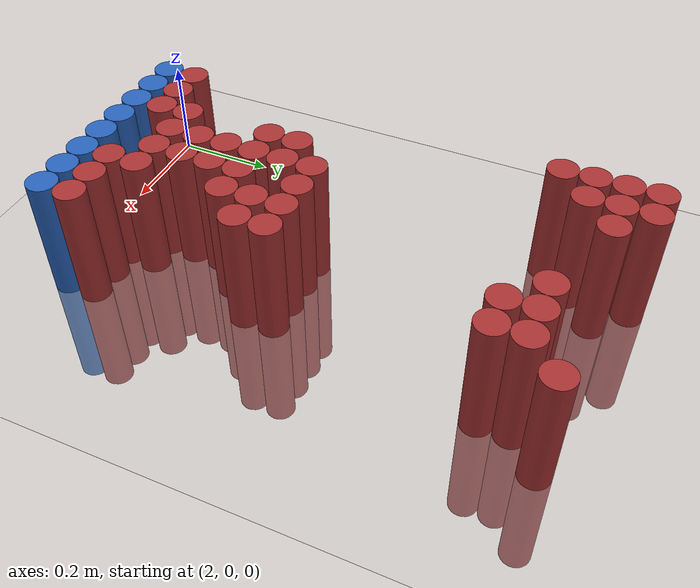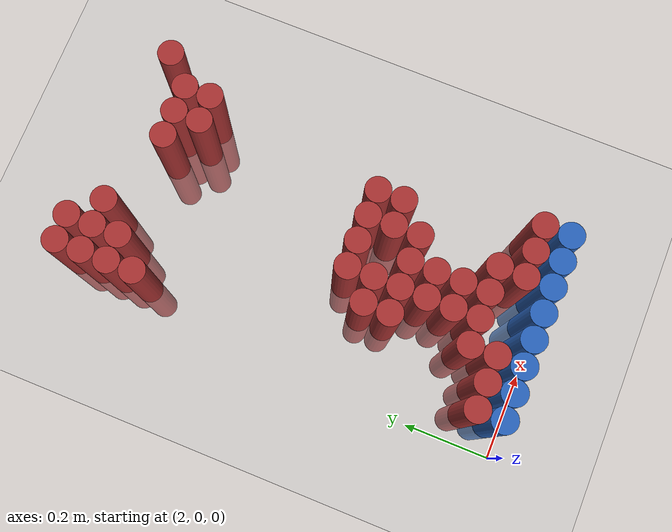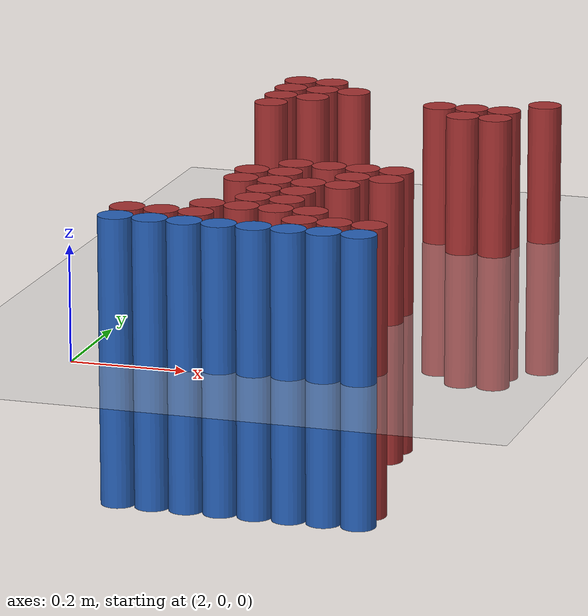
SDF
<sdf version="1.6">
 <world name="default">
  <model name="ground_plane">
   <static>1</static>
   <link name="link">
    <collision name="collision">
     <geometry><plane><normal>0 0 1</normal><size>100 100</size></plane></geometry>
     <surface><friction><ode><mu>100</mu><mu2>50</mu2></ode></friction></surface>
    </collision>
    <visual name="visual">
     <cast_shadows>0</cast_shadows>
     <geometry><plane><normal>0 0 1</normal><size>100 100</size></plane></geometry>
     <material>
      <script><uri>file://media/materials/scripts/gazebo.material</uri><name>Gazebo/Grey</name></script>
     </material>
    </visual>
   </link>
  </model>
  <model name="unit_cylinder_235">
   <static>1</static>
   <pose>2.070000 1.050000 0.000000 0.000000 0.000000 0.000000</pose>
   <link name="link">
    <inertial>
     <mass>1</mass>
     <inertia><ixx>0.145833</ixx><ixy>0</ixy><ixz>0</ixz><iyy>0.145833</iyy><iyz>0</iyz><izz>0.125</izz></inertia>
    </inertial>
    <collision name="collision">
     <geometry><cylinder><radius>0.030000</radius><length>0.5</length></cylinder></geometry>
    </collision>
    <visual name="visual">
     <geometry><cylinder><radius>0.030000</radius><length>0.5</length></cylinder></geometry>
     <material>
      <ambient>0.648000 0.192000 0.192000 1</ambient>
      <diffuse>0.648000 0.192000 0.192000 1</diffuse>
     </material>
     <material>
      <script><name>Gazebo/Grey</name><uri>file://media/materials/scripts/gazebo.material</uri></script>
     </material>
    </visual>
   </link>
  </model>
  <model name="unit_cylinder_236">
   <static>1</static>
   <pose>2.130000 1.050000 0.000000 0.000000 0.000000 0.000000</pose>
   <link name="link">
    <inertial>
     <mass>1</mass>
     <inertia><ixx>0.145833</ixx><ixy>0</ixy><ixz>0</ixz><iyy>0.145833</iyy><iyz>0</iyz><izz>0.125</izz></inertia>
    </inertial>
    <collision name="collision">
     <geometry><cylinder><radius>0.030000</radius><length>0.5</length></cylinder></geometry>
    </collision>
    <visual name="visual">
     <geometry><cylinder><radius>0.030000</radius><length>0.5</length></cylinder></geometry>
     <material>
      <ambient>0.648000 0.192000 0.192000 1</ambient>
      <diffuse>0.648000 0.192000 0.192000 1</diffuse>
     </material>
     <material>
      <script><name>Gazebo/Grey</name><uri>file://media/materials/scripts/gazebo.material</uri></script>
     </material>
    </visual>
   </link>
  </model>
  <model name="unit_cylinder_243">
   <static>1</static>
   <pose>2.070000 0.990000 0.000000 0.000000 0.000000 0.000000</pose>
   <link name="link">
    <inertial>
     <mass>1</mass>
     <inertia><ixx>0.145833</ixx><ixy>0</ixy><ixz>0</ixz><iyy>0.145833</iyy><iyz>0</iyz><izz>0.125</izz></inertia>
    </inertial>
    <collision name="collision">
     <geometry><cylinder><radius>0.030000</radius><length>0.5</length></cylinder></geometry>
    </collision>
    <visual name="visual">
     <geometry><cylinder><radius>0.030000</radius><length>0.5</length></cylinder></geometry>
     <material>
      <ambient>0.648000 0.192000 0.192000 1</ambient>
      <diffuse>0.648000 0.192000 0.192000 1</diffuse>
     </material>
     <material>
      <script><name>Gazebo/Grey</name><uri>file://media/materials/scripts/gazebo.material</uri></script>
     </material>
    </visual>
   </link>
  </model>
  <model name="unit_cylinder_244">
   <static>1</static>
   <pose>2.130000 0.990000 0.000000 0.000000 0.000000 0.000000</pose>
   <link name="link">
    <inertial>
     <mass>1</mass>
     <inertia><ixx>0.145833</ixx><ixy>0</ixy><ixz>0</ixz><iyy>0.145833</iyy><iyz>0</iyz><izz>0.125</izz></inertia>
    </inertial>
    <collision name="collision">
     <geometry><cylinder><radius>0.030000</radius><length>0.5</length></cylinder></geometry>
    </collision>
    <visual name="visual">
     <geometry><cylinder><radius>0.030000</radius><length>0.5</length></cylinder></geometry>
     <material>
      <ambient>0.648000 0.192000 0.192000 1</ambient>
      <diffuse>0.648000 0.192000 0.192000 1</diffuse>
     </material>
     <material>
      <script><name>Gazebo/Grey</name><uri>file://media/materials/scripts/gazebo.material</uri></script>
     </material>
    </visual>
   </link>
  </model>
  <model name="unit_cylinder_245">
   <static>1</static>
   <pose>2.190000 0.990000 0.000000 0.000000 0.000000 0.000000</pose>
   <link name="link">
    <inertial>
     <mass>1</mass>
     <inertia><ixx>0.145833</ixx><ixy>0</ixy><ixz>0</ixz><iyy>0.145833</iyy><iyz>0</iyz><izz>0.125</izz></inertia>
    </inertial>
    <collision name="collision">
     <geometry><cylinder><radius>0.030000</radius><length>0.5</length></cylinder></geometry>
    </collision>
    <visual name="visual">
     <geometry><cylinder><radius>0.030000</radius><length>0.5</length></cylinder></geometry>
     <material>
      <ambient>0.648000 0.192000 0.192000 1</ambient>
      <diffuse>0.648000 0.192000 0.192000 1</diffuse>
     </material>
     <material>
      <script><name>Gazebo/Grey</name><uri>file://media/materials/scripts/gazebo.material</uri></script>
     </material>
    </visual>
   </link>
  </model>
  <model name="unit_cylinder_246">
   <static>1</static>
   <pose>2.550000 0.990000 0.000000 0.000000 0.000000 0.000000</pose>
   <link name="link">
    <inertial>
     <mass>1</mass>
     <inertia><ixx>0.145833</ixx><ixy>0</ixy><ixz>0</ixz><iyy>0.145833</iyy><iyz>0</iyz><izz>0.125</izz></inertia>
    </inertial>
    <collision name="collision">
     <geometry><cylinder><radius>0.030000</radius><length>0.5</length></cylinder></geometry>
    </collision>
    <visual name="visual">
     <geometry><cylinder><radius>0.030000</radius><length>0.5</length></cylinder></geometry>
     <material>
      <ambient>0.648000 0.192000 0.192000 1</ambient>
      <diffuse>0.648000 0.192000 0.192000 1</diffuse>
     </material>
     <material>
      <script><name>Gazebo/Grey</name><uri>file://media/materials/scripts/gazebo.material</uri></script>
     </material>
    </visual>
   </link>
  </model>
  <model name="unit_cylinder_254">
   <static>1</static>
   <pose>2.070000 0.930000 0.000000 0.000000 0.000000 0.000000</pose>
   <link name="link">
    <inertial>
     <mass>1</mass>
     <inertia><ixx>0.145833</ixx><ixy>0</ixy><ixz>0</ixz><iyy>0.145833</iyy><iyz>0</iyz><izz>0.125</izz></inertia>
    </inertial>
    <collision name="collision">
     <geometry><cylinder><radius>0.030000</radius><length>0.5</length></cylinder></geometry>
    </collision>
    <visual name="visual">
     <geometry><cylinder><radius>0.030000</radius><length>0.5</length></cylinder></geometry>
     <material>
      <ambient>0.648000 0.192000 0.192000 1</ambient>
      <diffuse>0.648000 0.192000 0.192000 1</diffuse>
     </material>
     <material>
      <script><name>Gazebo/Grey</name><uri>file://media/materials/scripts/gazebo.material</uri></script>
     </material>
    </visual>
   </link>
  </model>
  <model name="unit_cylinder_255">
   <static>1</static>
   <pose>2.130000 0.930000 0.000000 0.000000 0.000000 0.000000</pose>
   <link name="link">
    <inertial>
     <mass>1</mass>
     <inertia><ixx>0.145833</ixx><ixy>0</ixy><ixz>0</ixz><iyy>0.145833</iyy><iyz>0</iyz><izz>0.125</izz></inertia>
    </inertial>
    <collision name="collision">
     <geometry><cylinder><radius>0.030000</radius><length>0.5</length></cylinder></geometry>
    </collision>
    <visual name="visual">
     <geometry><cylinder><radius>0.030000</radius><length>0.5</length></cylinder></geometry>
     <material>
      <ambient>0.648000 0.192000 0.192000 1</ambient>
      <diffuse>0.648000 0.192000 0.192000 1</diffuse>
     </material>
     <material>
      <script><name>Gazebo/Grey</name><uri>file://media/materials/scripts/gazebo.material</uri></script>
     </material>
    </visual>
   </link>
  </model>
  <model name="unit_cylinder_256">
   <static>1</static>
   <pose>2.370000 0.930000 0.000000 0.000000 0.000000 0.000000</pose>
   <link name="link">
    <inertial>
     <mass>1</mass>
     <inertia><ixx>0.145833</ixx><ixy>0</ixy><ixz>0</ixz><iyy>0.145833</iyy><iyz>0</iyz><izz>0.125</izz></inertia>
    </inertial>
    <collision name="collision">
     <geometry><cylinder><radius>0.030000</radius><length>0.5</length></cylinder></geometry>
    </collision>
    <visual name="visual">
     <geometry><cylinder><radius>0.030000</radius><length>0.5</length></cylinder></geometry>
     <material>
      <ambient>0.648000 0.192000 0.192000 1</ambient>
      <diffuse>0.648000 0.192000 0.192000 1</diffuse>
     </material>
     <material>
      <script><name>Gazebo/Grey</name><uri>file://media/materials/scripts/gazebo.material</uri></script>
     </material>
    </visual>
   </link>
  </model>
  <model name="unit_cylinder_257">
   <static>1</static>
   <pose>2.430000 0.930000 0.000000 0.000000 0.000000 0.000000</pose>
   <link name="link">
    <inertial>
     <mass>1</mass>
     <inertia><ixx>0.145833</ixx><ixy>0</ixy><ixz>0</ixz><iyy>0.145833</iyy><iyz>0</iyz><izz>0.125</izz></inertia>
    </inertial>
    <collision name="collision">
     <geometry><cylinder><radius>0.030000</radius><length>0.5</length></cylinder></geometry>
    </collision>
    <visual name="visual">
     <geometry><cylinder><radius>0.030000</radius><length>0.5</length></cylinder></geometry>
     <material>
      <ambient>0.648000 0.192000 0.192000 1</ambient>
      <diffuse>0.648000 0.192000 0.192000 1</diffuse>
     </material>
     <material>
      <script><name>Gazebo/Grey</name><uri>file://media/materials/scripts/gazebo.material</uri></script>
     </material>
    </visual>
   </link>
  </model>
  <model name="unit_cylinder_258">
   <static>1</static>
   <pose>2.490000 0.930000 0.000000 0.000000 0.000000 0.000000</pose>
   <link name="link">
    <inertial>
     <mass>1</mass>
     <inertia><ixx>0.145833</ixx><ixy>0</ixy><ixz>0</ixz><iyy>0.145833</iyy><iyz>0</iyz><izz>0.125</izz></inertia>
    </inertial>
    <collision name="collision">
     <geometry><cylinder><radius>0.030000</radius><length>0.5</length></cylinder></geometry>
    </collision>
    <visual name="visual">
     <geometry><cylinder><radius>0.030000</radius><length>0.5</length></cylinder></geometry>
     <material>
      <ambient>0.648000 0.192000 0.192000 1</ambient>
      <diffuse>0.648000 0.192000 0.192000 1</diffuse>
     </material>
     <material>
      <script><name>Gazebo/Grey</name><uri>file://media/materials/scripts/gazebo.material</uri></script>
     </material>
    </visual>
   </link>
  </model>
  <model name="unit_cylinder_268">
   <static>1</static>
   <pose>2.070000 0.870000 0.000000 0.000000 0.000000 0.000000</pose>
   <link name="link">
    <inertial>
     <mass>1</mass>
     <inertia><ixx>0.145833</ixx><ixy>0</ixy><ixz>0</ixz><iyy>0.145833</iyy><iyz>0</iyz><izz>0.125</izz></inertia>
    </inertial>
    <collision name="collision">
     <geometry><cylinder><radius>0.030000</radius><length>0.5</length></cylinder></geometry>
    </collision>
    <visual name="visual">
     <geometry><cylinder><radius>0.030000</radius><length>0.5</length></cylinder></geometry>
     <material>
      <ambient>0.648000 0.192000 0.192000 1</ambient>
      <diffuse>0.648000 0.192000 0.192000 1</diffuse>
     </material>
     <material>
      <script><name>Gazebo/Grey</name><uri>file://media/materials/scripts/gazebo.material</uri></script>
     </material>
    </visual>
   </link>
  </model>
  <model name="unit_cylinder_269">
   <static>1</static>
   <pose>2.430000 0.870000 0.000000 0.000000 0.000000 0.000000</pose>
   <link name="link">
    <inertial>
     <mass>1</mass>
     <inertia><ixx>0.145833</ixx><ixy>0</ixy><ixz>0</ixz><iyy>0.145833</iyy><iyz>0</iyz><izz>0.125</izz></inertia>
    </inertial>
    <collision name="collision">
     <geometry><cylinder><radius>0.030000</radius><length>0.5</length></cylinder></geometry>
    </collision>
    <visual name="visual">
     <geometry><cylinder><radius>0.030000</radius><length>0.5</length></cylinder></geometry>
     <material>
      <ambient>0.648000 0.192000 0.192000 1</ambient>
      <diffuse>0.648000 0.192000 0.192000 1</diffuse>
     </material>
     <material>
      <script><name>Gazebo/Grey</name><uri>file://media/materials/scripts/gazebo.material</uri></script>
     </material>
    </visual>
   </link>
  </model>
  <model name="unit_cylinder_270">
   <static>1</static>
   <pose>2.490000 0.870000 0.000000 0.000000 0.000000 0.000000</pose>
   <link name="link">
    <inertial>
     <mass>1</mass>
     <inertia><ixx>0.145833</ixx><ixy>0</ixy><ixz>0</ixz><iyy>0.145833</iyy><iyz>0</iyz><izz>0.125</izz></inertia>
    </inertial>
    <collision name="collision">
     <geometry><cylinder><radius>0.030000</radius><length>0.5</length></cylinder></geometry>
    </collision>
    <visual name="visual">
     <geometry><cylinder><radius>0.030000</radius><length>0.5</length></cylinder></geometry>
     <material>
      <ambient>0.648000 0.192000 0.192000 1</ambient>
      <diffuse>0.648000 0.192000 0.192000 1</diffuse>
     </material>
     <material>
      <script><name>Gazebo/Grey</name><uri>file://media/materials/scripts/gazebo.material</uri></script>
     </material>
    </visual>
   </link>
  </model>
  <model name="unit_cylinder_295">
   <static>1</static>
   <pose>2.250000 0.450000 0.000000 0.000000 0.000000 0.000000</pose>
   <link name="link">
    <inertial>
     <mass>1</mass>
     <inertia><ixx>0.145833</ixx><ixy>0</ixy><ixz>0</ixz><iyy>0.145833</iyy><iyz>0</iyz><izz>0.125</izz></inertia>
    </inertial>
    <collision name="collision">
     <geometry><cylinder><radius>0.030000</radius><length>0.5</length></cylinder></geometry>
    </collision>
    <visual name="visual">
     <geometry><cylinder><radius>0.030000</radius><length>0.5</length></cylinder></geometry>
     <material>
      <ambient>0.648000 0.192000 0.192000 1</ambient>
      <diffuse>0.648000 0.192000 0.192000 1</diffuse>
     </material>
     <material>
      <script><name>Gazebo/Grey</name><uri>file://media/materials/scripts/gazebo.material</uri></script>
     </material>
    </visual>
   </link>
  </model>
  <model name="unit_cylinder_296">
   <static>1</static>
   <pose>2.310000 0.450000 0.000000 0.000000 0.000000 0.000000</pose>
   <link name="link">
    <inertial>
     <mass>1</mass>
     <inertia><ixx>0.145833</ixx><ixy>0</ixy><ixz>0</ixz><iyy>0.145833</iyy><iyz>0</iyz><izz>0.125</izz></inertia>
    </inertial>
    <collision name="collision">
     <geometry><cylinder><radius>0.030000</radius><length>0.5</length></cylinder></geometry>
    </collision>
    <visual name="visual">
     <geometry><cylinder><radius>0.030000</radius><length>0.5</length></cylinder></geometry>
     <material>
      <ambient>0.648000 0.192000 0.192000 1</ambient>
      <diffuse>0.648000 0.192000 0.192000 1</diffuse>
     </material>
     <material>
      <script><name>Gazebo/Grey</name><uri>file://media/materials/scripts/gazebo.material</uri></script>
     </material>
    </visual>
   </link>
  </model>
  <model name="unit_cylinder_297">
   <static>1</static>
   <pose>2.370000 0.450000 0.000000 0.000000 0.000000 0.000000</pose>
   <link name="link">
    <inertial>
     <mass>1</mass>
     <inertia><ixx>0.145833</ixx><ixy>0</ixy><ixz>0</ixz><iyy>0.145833</iyy><iyz>0</iyz><izz>0.125</izz></inertia>
    </inertial>
    <collision name="collision">
     <geometry><cylinder><radius>0.030000</radius><length>0.5</length></cylinder></geometry>
    </collision>
    <visual name="visual">
     <geometry><cylinder><radius>0.030000</radius><length>0.5</length></cylinder></geometry>
     <material>
      <ambient>0.648000 0.192000 0.192000 1</ambient>
      <diffuse>0.648000 0.192000 0.192000 1</diffuse>
     </material>
     <material>
      <script><name>Gazebo/Grey</name><uri>file://media/materials/scripts/gazebo.material</uri></script>
     </material>
    </visual>
   </link>
  </model>
  <model name="unit_cylinder_298">
   <static>1</static>
   <pose>2.430000 0.450000 0.000000 0.000000 0.000000 0.000000</pose>
   <link name="link">
    <inertial>
     <mass>1</mass>
     <inertia><ixx>0.145833</ixx><ixy>0</ixy><ixz>0</ixz><iyy>0.145833</iyy><iyz>0</iyz><izz>0.125</izz></inertia>
    </inertial>
    <collision name="collision">
     <geometry><cylinder><radius>0.030000</radius><length>0.5</length></cylinder></geometry>
    </collision>
    <visual name="visual">
     <geometry><cylinder><radius>0.030000</radius><length>0.5</length></cylinder></geometry>
     <material>
      <ambient>0.648000 0.192000 0.192000 1</ambient>
      <diffuse>0.648000 0.192000 0.192000 1</diffuse>
     </material>
     <material>
      <script><name>Gazebo/Grey</name><uri>file://media/materials/scripts/gazebo.material</uri></script>
     </material>
    </visual>
   </link>
  </model>
  <model name="unit_cylinder_299">
   <static>1</static>
   <pose>2.190000 0.390000 0.000000 0.000000 0.000000 0.000000</pose>
   <link name="link">
    <inertial>
     <mass>1</mass>
     <inertia><ixx>0.145833</ixx><ixy>0</ixy><ixz>0</ixz><iyy>0.145833</iyy><iyz>0</iyz><izz>0.125</izz></inertia>
    </inertial>
    <collision name="collision">
     <geometry><cylinder><radius>0.030000</radius><length>0.5</length></cylinder></geometry>
    </collision>
    <visual name="visual">
     <geometry><cylinder><radius>0.030000</radius><length>0.5</length></cylinder></geometry>
     <material>
      <ambient>0.648000 0.192000 0.192000 1</ambient>
      <diffuse>0.648000 0.192000 0.192000 1</diffuse>
     </material>
     <material>
      <script><name>Gazebo/Grey</name><uri>file://media/materials/scripts/gazebo.material</uri></script>
     </material>
    </visual>
   </link>
  </model>
  <model name="unit_cylinder_300">
   <static>1</static>
   <pose>2.250000 0.390000 0.000000 0.000000 0.000000 0.000000</pose>
   <link name="link">
    <inertial>
     <mass>1</mass>
     <inertia><ixx>0.145833</ixx><ixy>0</ixy><ixz>0</ixz><iyy>0.145833</iyy><iyz>0</iyz><izz>0.125</izz></inertia>
    </inertial>
    <collision name="collision">
     <geometry><cylinder><radius>0.030000</radius><length>0.5</length></cylinder></geometry>
    </collision>
    <visual name="visual">
     <geometry><cylinder><radius>0.030000</radius><length>0.5</length></cylinder></geometry>
     <material>
      <ambient>0.648000 0.192000 0.192000 1</ambient>
      <diffuse>0.648000 0.192000 0.192000 1</diffuse>
     </material>
     <material>
      <script><name>Gazebo/Grey</name><uri>file://media/materials/scripts/gazebo.material</uri></script>
     </material>
    </visual>
   </link>
  </model>
  <model name="unit_cylinder_301">
   <static>1</static>
   <pose>2.370000 0.390000 0.000000 0.000000 0.000000 0.000000</pose>
   <link name="link">
    <inertial>
     <mass>1</mass>
     <inertia><ixx>0.145833</ixx><ixy>0</ixy><ixz>0</ixz><iyy>0.145833</iyy><iyz>0</iyz><izz>0.125</izz></inertia>
    </inertial>
    <collision name="collision">
     <geometry><cylinder><radius>0.030000</radius><length>0.5</length></cylinder></geometry>
    </collision>
    <visual name="visual">
     <geometry><cylinder><radius>0.030000</radius><length>0.5</length></cylinder></geometry>
     <material>
      <ambient>0.648000 0.192000 0.192000 1</ambient>
      <diffuse>0.648000 0.192000 0.192000 1</diffuse>
     </material>
     <material>
      <script><name>Gazebo/Grey</name><uri>file://media/materials/scripts/gazebo.material</uri></script>
     </material>
    </visual>
   </link>
  </model>
  <model name="unit_cylinder_302">
   <static>1</static>
   <pose>2.430000 0.390000 0.000000 0.000000 0.000000 0.000000</pose>
   <link name="link">
    <inertial>
     <mass>1</mass>
     <inertia><ixx>0.145833</ixx><ixy>0</ixy><ixz>0</ixz><iyy>0.145833</iyy><iyz>0</iyz><izz>0.125</izz></inertia>
    </inertial>
    <collision name="collision">
     <geometry><cylinder><radius>0.030000</radius><length>0.5</length></cylinder></geometry>
    </collision>
    <visual name="visual">
     <geometry><cylinder><radius>0.030000</radius><length>0.5</length></cylinder></geometry>
     <material>
      <ambient>0.648000 0.192000 0.192000 1</ambient>
      <diffuse>0.648000 0.192000 0.192000 1</diffuse>
     </material>
     <material>
      <script><name>Gazebo/Grey</name><uri>file://media/materials/scripts/gazebo.material</uri></script>
     </material>
    </visual>
   </link>
  </model>
  <model name="unit_cylinder_303">
   <static>1</static>
   <pose>2.190000 0.330000 0.000000 0.000000 0.000000 0.000000</pose>
   <link name="link">
    <inertial>
     <mass>1</mass>
     <inertia><ixx>0.145833</ixx><ixy>0</ixy><ixz>0</ixz><iyy>0.145833</iyy><iyz>0</iyz><izz>0.125</izz></inertia>
    </inertial>
    <collision name="collision">
     <geometry><cylinder><radius>0.030000</radius><length>0.5</length></cylinder></geometry>
    </collision>
    <visual name="visual">
     <geometry><cylinder><radius>0.030000</radius><length>0.5</length></cylinder></geometry>
     <material>
      <ambient>0.648000 0.192000 0.192000 1</ambient>
      <diffuse>0.648000 0.192000 0.192000 1</diffuse>
     </material>
     <material>
      <script><name>Gazebo/Grey</name><uri>file://media/materials/scripts/gazebo.material</uri></script>
     </material>
    </visual>
   </link>
  </model>
  <model name="unit_cylinder_304">
   <static>1</static>
   <pose>2.250000 0.330000 0.000000 0.000000 0.000000 0.000000</pose>
   <link name="link">
    <inertial>
     <mass>1</mass>
     <inertia><ixx>0.145833</ixx><ixy>0</ixy><ixz>0</ixz><iyy>0.145833</iyy><iyz>0</iyz><izz>0.125</izz></inertia>
    </inertial>
    <collision name="collision">
     <geometry><cylinder><radius>0.030000</radius><length>0.5</length></cylinder></geometry>
    </collision>
    <visual name="visual">
     <geometry><cylinder><radius>0.030000</radius><length>0.5</length></cylinder></geometry>
     <material>
      <ambient>0.648000 0.192000 0.192000 1</ambient>
      <diffuse>0.648000 0.192000 0.192000 1</diffuse>
     </material>
     <material>
      <script><name>Gazebo/Grey</name><uri>file://media/materials/scripts/gazebo.material</uri></script>
     </material>
    </visual>
   </link>
  </model>
  <model name="unit_cylinder_305">
   <static>1</static>
   <pose>2.310000 0.330000 0.000000 0.000000 0.000000 0.000000</pose>
   <link name="link">
    <inertial>
     <mass>1</mass>
     <inertia><ixx>0.145833</ixx><ixy>0</ixy><ixz>0</ixz><iyy>0.145833</iyy><iyz>0</iyz><izz>0.125</izz></inertia>
    </inertial>
    <collision name="collision">
     <geometry><cylinder><radius>0.030000</radius><length>0.5</length></cylinder></geometry>
    </collision>
    <visual name="visual">
     <geometry><cylinder><radius>0.030000</radius><length>0.5</length></cylinder></geometry>
     <material>
      <ambient>0.648000 0.192000 0.192000 1</ambient>
      <diffuse>0.648000 0.192000 0.192000 1</diffuse>
     </material>
     <material>
      <script><name>Gazebo/Grey</name><uri>file://media/materials/scripts/gazebo.material</uri></script>
     </material>
    </visual>
   </link>
  </model>
  <model name="unit_cylinder_306">
   <static>1</static>
   <pose>2.370000 0.330000 0.000000 0.000000 0.000000 0.000000</pose>
   <link name="link">
    <inertial>
     <mass>1</mass>
     <inertia><ixx>0.145833</ixx><ixy>0</ixy><ixz>0</ixz><iyy>0.145833</iyy><iyz>0</iyz><izz>0.125</izz></inertia>
    </inertial>
    <collision name="collision">
     <geometry><cylinder><radius>0.030000</radius><length>0.5</length></cylinder></geometry>
    </collision>
    <visual name="visual">
     <geometry><cylinder><radius>0.030000</radius><length>0.5</length></cylinder></geometry>
     <material>
      <ambient>0.648000 0.192000 0.192000 1</ambient>
      <diffuse>0.648000 0.192000 0.192000 1</diffuse>
     </material>
     <material>
      <script><name>Gazebo/Grey</name><uri>file://media/materials/scripts/gazebo.material</uri></script>
     </material>
    </visual>
   </link>
  </model>
  <model name="unit_cylinder_308">
   <static>1</static>
   <pose>2.250000 0.270000 0.000000 0.000000 0.000000 0.000000</pose>
   <link name="link">
    <inertial>
     <mass>1</mass>
     <inertia><ixx>0.145833</ixx><ixy>0</ixy><ixz>0</ixz><iyy>0.145833</iyy><iyz>0</iyz><izz>0.125</izz></inertia>
    </inertial>
    <collision name="collision">
     <geometry><cylinder><radius>0.030000</radius><length>0.5</length></cylinder></geometry>
    </collision>
    <visual name="visual">
     <geometry><cylinder><radius>0.030000</radius><length>0.5</length></cylinder></geometry>
     <material>
      <ambient>0.648000 0.192000 0.192000 1</ambient>
      <diffuse>0.648000 0.192000 0.192000 1</diffuse>
     </material>
     <material>
      <script><name>Gazebo/Grey</name><uri>file://media/materials/scripts/gazebo.material</uri></script>
     </material>
    </visual>
   </link>
  </model>
  <model name="unit_cylinder_309">
   <static>1</static>
   <pose>2.310000 0.270000 0.000000 0.000000 0.000000 0.000000</pose>
   <link name="link">
    <inertial>
     <mass>1</mass>
     <inertia><ixx>0.145833</ixx><ixy>0</ixy><ixz>0</ixz><iyy>0.145833</iyy><iyz>0</iyz><izz>0.125</izz></inertia>
    </inertial>
    <collision name="collision">
     <geometry><cylinder><radius>0.030000</radius><length>0.5</length></cylinder></geometry>
    </collision>
    <visual name="visual">
     <geometry><cylinder><radius>0.030000</radius><length>0.5</length></cylinder></geometry>
     <material>
      <ambient>0.648000 0.192000 0.192000 1</ambient>
      <diffuse>0.648000 0.192000 0.192000 1</diffuse>
     </material>
     <material>
      <script><name>Gazebo/Grey</name><uri>file://media/materials/scripts/gazebo.material</uri></script>
     </material>
    </visual>
   </link>
  </model>
  <model name="unit_cylinder_312">
   <static>1</static>
   <pose>2.250000 0.210000 0.000000 0.000000 0.000000 0.000000</pose>
   <link name="link">
    <inertial>
     <mass>1</mass>
     <inertia><ixx>0.145833</ixx><ixy>0</ixy><ixz>0</ixz><iyy>0.145833</iyy><iyz>0</iyz><izz>0.125</izz></inertia>
    </inertial>
    <collision name="collision">
     <geometry><cylinder><radius>0.030000</radius><length>0.5</length></cylinder></geometry>
    </collision>
    <visual name="visual">
     <geometry><cylinder><radius>0.030000</radius><length>0.5</length></cylinder></geometry>
     <material>
      <ambient>0.648000 0.192000 0.192000 1</ambient>
      <diffuse>0.648000 0.192000 0.192000 1</diffuse>
     </material>
     <material>
      <script><name>Gazebo/Grey</name><uri>file://media/materials/scripts/gazebo.material</uri></script>
     </material>
    </visual>
   </link>
  </model>
  <model name="unit_cylinder_313">
   <static>1</static>
   <pose>2.310000 0.210000 0.000000 0.000000 0.000000 0.000000</pose>
   <link name="link">
    <inertial>
     <mass>1</mass>
     <inertia><ixx>0.145833</ixx><ixy>0</ixy><ixz>0</ixz><iyy>0.145833</iyy><iyz>0</iyz><izz>0.125</izz></inertia>
    </inertial>
    <collision name="collision">
     <geometry><cylinder><radius>0.030000</radius><length>0.5</length></cylinder></geometry>
    </collision>
    <visual name="visual">
     <geometry><cylinder><radius>0.030000</radius><length>0.5</length></cylinder></geometry>
     <material>
      <ambient>0.648000 0.192000 0.192000 1</ambient>
      <diffuse>0.648000 0.192000 0.192000 1</diffuse>
     </material>
     <material>
      <script><name>Gazebo/Grey</name><uri>file://media/materials/scripts/gazebo.material</uri></script>
     </material>
    </visual>
   </link>
  </model>
  <model name="unit_cylinder_321">
   <static>1</static>
   <pose>2.190000 0.150000 0.000000 0.000000 0.000000 0.000000</pose>
   <link name="link">
    <inertial>
     <mass>1</mass>
     <inertia><ixx>0.145833</ixx><ixy>0</ixy><ixz>0</ixz><iyy>0.145833</iyy><iyz>0</iyz><izz>0.125</izz></inertia>
    </inertial>
    <collision name="collision">
     <geometry><cylinder><radius>0.030000</radius><length>0.5</length></cylinder></geometry>
    </collision>
    <visual name="visual">
     <geometry><cylinder><radius>0.030000</radius><length>0.5</length></cylinder></geometry>
     <material>
      <ambient>0.648000 0.192000 0.192000 1</ambient>
      <diffuse>0.648000 0.192000 0.192000 1</diffuse>
     </material>
     <material>
      <script><name>Gazebo/Grey</name><uri>file://media/materials/scripts/gazebo.material</uri></script>
     </material>
    </visual>
   </link>
  </model>
  <model name="unit_cylinder_322">
   <static>1</static>
   <pose>2.250000 0.150000 0.000000 0.000000 0.000000 0.000000</pose>
   <link name="link">
    <inertial>
     <mass>1</mass>
     <inertia><ixx>0.145833</ixx><ixy>0</ixy><ixz>0</ixz><iyy>0.145833</iyy><iyz>0</iyz><izz>0.125</izz></inertia>
    </inertial>
    <collision name="collision">
     <geometry><cylinder><radius>0.030000</radius><length>0.5</length></cylinder></geometry>
    </collision>
    <visual name="visual">
     <geometry><cylinder><radius>0.030000</radius><length>0.5</length></cylinder></geometry>
     <material>
      <ambient>0.648000 0.192000 0.192000 1</ambient>
      <diffuse>0.648000 0.192000 0.192000 1</diffuse>
     </material>
     <material>
      <script><name>Gazebo/Grey</name><uri>file://media/materials/scripts/gazebo.material</uri></script>
     </material>
    </visual>
   </link>
  </model>
  <model name="unit_cylinder_323">
   <static>1</static>
   <pose>2.310000 0.150000 0.000000 0.000000 0.000000 0.000000</pose>
   <link name="link">
    <inertial>
     <mass>1</mass>
     <inertia><ixx>0.145833</ixx><ixy>0</ixy><ixz>0</ixz><iyy>0.145833</iyy><iyz>0</iyz><izz>0.125</izz></inertia>
    </inertial>
    <collision name="collision">
     <geometry><cylinder><radius>0.030000</radius><length>0.5</length></cylinder></geometry>
    </collision>
    <visual name="visual">
     <geometry><cylinder><radius>0.030000</radius><length>0.5</length></cylinder></geometry>
     <material>
      <ambient>0.648000 0.192000 0.192000 1</ambient>
      <diffuse>0.648000 0.192000 0.192000 1</diffuse>
     </material>
     <material>
      <script><name>Gazebo/Grey</name><uri>file://media/materials/scripts/gazebo.material</uri></script>
     </material>
    </visual>
   </link>
  </model>
  <model name="unit_cylinder_324">
   <static>1</static>
   <pose>2.370000 0.150000 0.000000 0.000000 0.000000 0.000000</pose>
   <link name="link">
    <inertial>
     <mass>1</mass>
     <inertia><ixx>0.145833</ixx><ixy>0</ixy><ixz>0</ixz><iyy>0.145833</iyy><iyz>0</iyz><izz>0.125</izz></inertia>
    </inertial>
    <collision name="collision">
     <geometry><cylinder><radius>0.030000</radius><length>0.5</length></cylinder></geometry>
    </collision>
    <visual name="visual">
     <geometry><cylinder><radius>0.030000</radius><length>0.5</length></cylinder></geometry>
     <material>
      <ambient>0.648000 0.192000 0.192000 1</ambient>
      <diffuse>0.648000 0.192000 0.192000 1</diffuse>
     </material>
     <material>
      <script><name>Gazebo/Grey</name><uri>file://media/materials/scripts/gazebo.material</uri></script>
     </material>
    </visual>
   </link>
  </model>
  <model name="unit_cylinder_336">
   <static>1</static>
   <pose>2.070000 0.090000 0.000000 0.000000 0.000000 0.000000</pose>
   <link name="link">
    <inertial>
     <mass>1</mass>
     <inertia><ixx>0.145833</ixx><ixy>0</ixy><ixz>0</ixz><iyy>0.145833</iyy><iyz>0</iyz><izz>0.125</izz></inertia>
    </inertial>
    <collision name="collision">
     <geometry><cylinder><radius>0.030000</radius><length>0.5</length></cylinder></geometry>
    </collision>
    <visual name="visual">
     <geometry><cylinder><radius>0.030000</radius><length>0.5</length></cylinder></geometry>
     <material>
      <ambient>0.648000 0.192000 0.192000 1</ambient>
      <diffuse>0.648000 0.192000 0.192000 1</diffuse>
     </material>
     <material>
      <script><name>Gazebo/Grey</name><uri>file://media/materials/scripts/gazebo.material</uri></script>
     </material>
    </visual>
   </link>
  </model>
  <model name="unit_cylinder_337">
   <static>1</static>
   <pose>2.130000 0.090000 0.000000 0.000000 0.000000 0.000000</pose>
   <link name="link">
    <inertial>
     <mass>1</mass>
     <inertia><ixx>0.145833</ixx><ixy>0</ixy><ixz>0</ixz><iyy>0.145833</iyy><iyz>0</iyz><izz>0.125</izz></inertia>
    </inertial>
    <collision name="collision">
     <geometry><cylinder><radius>0.030000</radius><length>0.5</length></cylinder></geometry>
    </collision>
    <visual name="visual">
     <geometry><cylinder><radius>0.030000</radius><length>0.5</length></cylinder></geometry>
     <material>
      <ambient>0.648000 0.192000 0.192000 1</ambient>
      <diffuse>0.648000 0.192000 0.192000 1</diffuse>
     </material>
     <material>
      <script><name>Gazebo/Grey</name><uri>file://media/materials/scripts/gazebo.material</uri></script>
     </material>
    </visual>
   </link>
  </model>
  <model name="unit_cylinder_338">
   <static>1</static>
   <pose>2.190000 0.090000 0.000000 0.000000 0.000000 0.000000</pose>
   <link name="link">
    <inertial>
     <mass>1</mass>
     <inertia><ixx>0.145833</ixx><ixy>0</ixy><ixz>0</ixz><iyy>0.145833</iyy><iyz>0</iyz><izz>0.125</izz></inertia>
    </inertial>
    <collision name="collision">
     <geometry><cylinder><radius>0.030000</radius><length>0.5</length></cylinder></geometry>
    </collision>
    <visual name="visual">
     <geometry><cylinder><radius>0.030000</radius><length>0.5</length></cylinder></geometry>
     <material>
      <ambient>0.648000 0.192000 0.192000 1</ambient>
      <diffuse>0.648000 0.192000 0.192000 1</diffuse>
     </material>
     <material>
      <script><name>Gazebo/Grey</name><uri>file://media/materials/scripts/gazebo.material</uri></script>
     </material>
    </visual>
   </link>
  </model>
  <model name="unit_cylinder_339">
   <static>1</static>
   <pose>2.370000 0.090000 0.000000 0.000000 0.000000 0.000000</pose>
   <link name="link">
    <inertial>
     <mass>1</mass>
     <inertia><ixx>0.145833</ixx><ixy>0</ixy><ixz>0</ixz><iyy>0.145833</iyy><iyz>0</iyz><izz>0.125</izz></inertia>
    </inertial>
    <collision name="collision">
     <geometry><cylinder><radius>0.030000</radius><length>0.5</length></cylinder></geometry>
    </collision>
    <visual name="visual">
     <geometry><cylinder><radius>0.030000</radius><length>0.5</length></cylinder></geometry>
     <material>
      <ambient>0.648000 0.192000 0.192000 1</ambient>
      <diffuse>0.648000 0.192000 0.192000 1</diffuse>
     </material>
     <material>
      <script><name>Gazebo/Grey</name><uri>file://media/materials/scripts/gazebo.material</uri></script>
     </material>
    </visual>
   </link>
  </model>
  <model name="unit_cylinder_340">
   <static>1</static>
   <pose>2.430000 0.090000 0.000000 0.000000 0.000000 0.000000</pose>
   <link name="link">
    <inertial>
     <mass>1</mass>
     <inertia><ixx>0.145833</ixx><ixy>0</ixy><ixz>0</ixz><iyy>0.145833</iyy><iyz>0</iyz><izz>0.125</izz></inertia>
    </inertial>
    <collision name="collision">
     <geometry><cylinder><radius>0.030000</radius><length>0.5</length></cylinder></geometry>
    </collision>
    <visual name="visual">
     <geometry><cylinder><radius>0.030000</radius><length>0.5</length></cylinder></geometry>
     <material>
      <ambient>0.648000 0.192000 0.192000 1</ambient>
      <diffuse>0.648000 0.192000 0.192000 1</diffuse>
     </material>
     <material>
      <script><name>Gazebo/Grey</name><uri>file://media/materials/scripts/gazebo.material</uri></script>
     </material>
    </visual>
   </link>
  </model>
  <model name="unit_cylinder_341">
   <static>1</static>
   <pose>2.490000 0.090000 0.000000 0.000000 0.000000 0.000000</pose>
   <link name="link">
    <inertial>
     <mass>1</mass>
     <inertia><ixx>0.145833</ixx><ixy>0</ixy><ixz>0</ixz><iyy>0.145833</iyy><iyz>0</iyz><izz>0.125</izz></inertia>
    </inertial>
    <collision name="collision">
     <geometry><cylinder><radius>0.030000</radius><length>0.5</length></cylinder></geometry>
    </collision>
    <visual name="visual">
     <geometry><cylinder><radius>0.030000</radius><length>0.5</length></cylinder></geometry>
     <material>
      <ambient>0.648000 0.192000 0.192000 1</ambient>
      <diffuse>0.648000 0.192000 0.192000 1</diffuse>
     </material>
     <material>
      <script><name>Gazebo/Grey</name><uri>file://media/materials/scripts/gazebo.material</uri></script>
     </material>
    </visual>
   </link>
  </model>
  <model name="unit_cylinder_355">
   <static>1</static>
   <pose>2.070000 0.030000 0.000000 0.000000 0.000000 0.000000</pose>
   <link name="link">
    <inertial>
     <mass>1</mass>
     <inertia><ixx>0.145833</ixx><ixy>0</ixy><ixz>0</ixz><iyy>0.145833</iyy><iyz>0</iyz><izz>0.125</izz></inertia>
    </inertial>
    <collision name="collision">
     <geometry><cylinder><radius>0.030000</radius><length>0.5</length></cylinder></geometry>
    </collision>
    <visual name="visual">
     <geometry><cylinder><radius>0.030000</radius><length>0.5</length></cylinder></geometry>
     <material>
      <ambient>0.152000 0.379000 0.720000 1</ambient>
      <diffuse>0.152000 0.379000 0.720000 1</diffuse>
     </material>
     <material>
      <script><name>Gazebo/Grey</name><uri>file://media/materials/scripts/gazebo.material</uri></script>
     </material>
    </visual>
   </link>
  </model>
  <model name="unit_cylinder_356">
   <static>1</static>
   <pose>2.130000 0.030000 0.000000 0.000000 0.000000 0.000000</pose>
   <link name="link">
    <inertial>
     <mass>1</mass>
     <inertia><ixx>0.145833</ixx><ixy>0</ixy><ixz>0</ixz><iyy>0.145833</iyy><iyz>0</iyz><izz>0.125</izz></inertia>
    </inertial>
    <collision name="collision">
     <geometry><cylinder><radius>0.030000</radius><length>0.5</length></cylinder></geometry>
    </collision>
    <visual name="visual">
     <geometry><cylinder><radius>0.030000</radius><length>0.5</length></cylinder></geometry>
     <material>
      <ambient>0.152000 0.379000 0.720000 1</ambient>
      <diffuse>0.152000 0.379000 0.720000 1</diffuse>
     </material>
     <material>
      <script><name>Gazebo/Grey</name><uri>file://media/materials/scripts/gazebo.material</uri></script>
     </material>
    </visual>
   </link>
  </model>
  <model name="unit_cylinder_357">
   <static>1</static>
   <pose>2.190000 0.030000 0.000000 0.000000 0.000000 0.000000</pose>
   <link name="link">
    <inertial>
     <mass>1</mass>
     <inertia><ixx>0.145833</ixx><ixy>0</ixy><ixz>0</ixz><iyy>0.145833</iyy><iyz>0</iyz><izz>0.125</izz></inertia>
    </inertial>
    <collision name="collision">
     <geometry><cylinder><radius>0.030000</radius><length>0.5</length></cylinder></geometry>
    </collision>
    <visual name="visual">
     <geometry><cylinder><radius>0.030000</radius><length>0.5</length></cylinder></geometry>
     <material>
      <ambient>0.152000 0.379000 0.720000 1</ambient>
      <diffuse>0.152000 0.379000 0.720000 1</diffuse>
     </material>
     <material>
      <script><name>Gazebo/Grey</name><uri>file://media/materials/scripts/gazebo.material</uri></script>
     </material>
    </visual>
   </link>
  </model>
  <model name="unit_cylinder_358">
   <static>1</static>
   <pose>2.250000 0.030000 0.000000 0.000000 0.000000 0.000000</pose>
   <link name="link">
    <inertial>
     <mass>1</mass>
     <inertia><ixx>0.145833</ixx><ixy>0</ixy><ixz>0</ixz><iyy>0.145833</iyy><iyz>0</iyz><izz>0.125</izz></inertia>
    </inertial>
    <collision name="collision">
     <geometry><cylinder><radius>0.030000</radius><length>0.5</length></cylinder></geometry>
    </collision>
    <visual name="visual">
     <geometry><cylinder><radius>0.030000</radius><length>0.5</length></cylinder></geometry>
     <material>
      <ambient>0.152000 0.379000 0.720000 1</ambient>
      <diffuse>0.152000 0.379000 0.720000 1</diffuse>
     </material>
     <material>
      <script><name>Gazebo/Grey</name><uri>file://media/materials/scripts/gazebo.material</uri></script>
     </material>
    </visual>
   </link>
  </model>
  <model name="unit_cylinder_359">
   <static>1</static>
   <pose>2.310000 0.030000 0.000000 0.000000 0.000000 0.000000</pose>
   <link name="link">
    <inertial>
     <mass>1</mass>
     <inertia><ixx>0.145833</ixx><ixy>0</ixy><ixz>0</ixz><iyy>0.145833</iyy><iyz>0</iyz><izz>0.125</izz></inertia>
    </inertial>
    <collision name="collision">
     <geometry><cylinder><radius>0.030000</radius><length>0.5</length></cylinder></geometry>
    </collision>
    <visual name="visual">
     <geometry><cylinder><radius>0.030000</radius><length>0.5</length></cylinder></geometry>
     <material>
      <ambient>0.152000 0.379000 0.720000 1</ambient>
      <diffuse>0.152000 0.379000 0.720000 1</diffuse>
     </material>
     <material>
      <script><name>Gazebo/Grey</name><uri>file://media/materials/scripts/gazebo.material</uri></script>
     </material>
    </visual>
   </link>
  </model>
  <model name="unit_cylinder_360">
   <static>1</static>
   <pose>2.370000 0.030000 0.000000 0.000000 0.000000 0.000000</pose>
   <link name="link">
    <inertial>
     <mass>1</mass>
     <inertia><ixx>0.145833</ixx><ixy>0</ixy><ixz>0</ixz><iyy>0.145833</iyy><iyz>0</iyz><izz>0.125</izz></inertia>
    </inertial>
    <collision name="collision">
     <geometry><cylinder><radius>0.030000</radius><length>0.5</length></cylinder></geometry>
    </collision>
    <visual name="visual">
     <geometry><cylinder><radius>0.030000</radius><length>0.5</length></cylinder></geometry>
     <material>
      <ambient>0.152000 0.379000 0.720000 1</ambient>
      <diffuse>0.152000 0.379000 0.720000 1</diffuse>
     </material>
     <material>
      <script><name>Gazebo/Grey</name><uri>file://media/materials/scripts/gazebo.material</uri></script>
     </material>
    </visual>
   </link>
  </model>
  <model name="unit_cylinder_361">
   <static>1</static>
   <pose>2.430000 0.030000 0.000000 0.000000 0.000000 0.000000</pose>
   <link name="link">
    <inertial>
     <mass>1</mass>
     <inertia><ixx>0.145833</ixx><ixy>0</ixy><ixz>0</ixz><iyy>0.145833</iyy><iyz>0</iyz><izz>0.125</izz></inertia>
    </inertial>
    <collision name="collision">
     <geometry><cylinder><radius>0.030000</radius><length>0.5</length></cylinder></geometry>
    </collision>
    <visual name="visual">
     <geometry><cylinder><radius>0.030000</radius><length>0.5</length></cylinder></geometry>
     <material>
      <ambient>0.152000 0.379000 0.720000 1</ambient>
      <diffuse>0.152000 0.379000 0.720000 1</diffuse>
     </material>
     <material>
      <script><name>Gazebo/Grey</name><uri>file://media/materials/scripts/gazebo.material</uri></script>
     </material>
    </visual>
   </link>
  </model>
  <model name="unit_cylinder_362">
   <static>1</static>
   <pose>2.490000 0.030000 0.000000 0.000000 0.000000 0.000000</pose>
   <link name="link">
    <inertial>
     <mass>1</mass>
     <inertia><ixx>0.145833</ixx><ixy>0</ixy><ixz>0</ixz><iyy>0.145833</iyy><iyz>0</iyz><izz>0.125</izz></inertia>
    </inertial>
    <collision name="collision">
     <geometry><cylinder><radius>0.030000</radius><length>0.5</length></cylinder></geometry>
    </collision>
    <visual name="visual">
     <geometry><cylinder><radius>0.030000</radius><length>0.5</length></cylinder></geometry>
     <material>
      <ambient>0.152000 0.379000 0.720000 1</ambient>
      <diffuse>0.152000 0.379000 0.720000 1</diffuse>
     </material>
     <material>
      <script><name>Gazebo/Grey</name><uri>file://media/materials/scripts/gazebo.material</uri></script>
     </material>
    </visual>
   </link>
  </model>
 </world>
</sdf>
